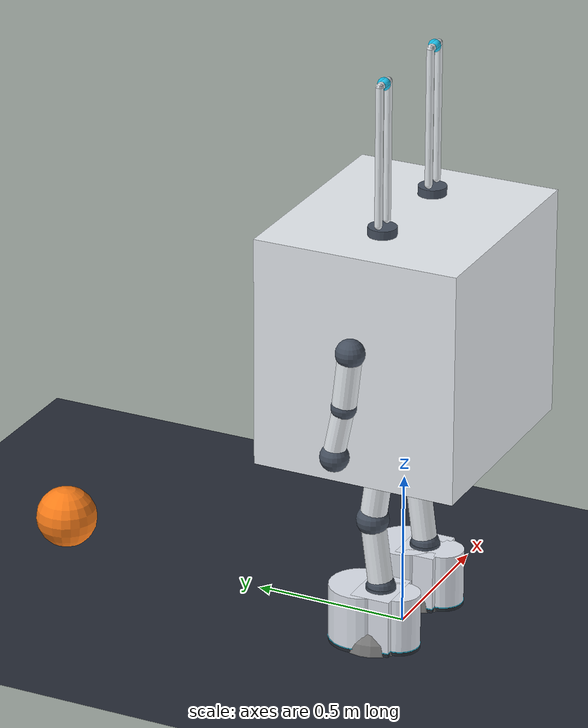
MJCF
<mujoco model="robot_pet">
  <compiler angle="degree" coordinate="local" inertiafromgeom="true"/>
  <!-- Information Boltzmann Unified Cold Bath: Fluid Viscous Dissipation on Free Base -->
  <option timestep="0.002" gravity="0 0 -9.81" iterations="50" solver="Newton" density="1.2" viscosity="0.0005">
    <flag contact="enable" energy="enable"/>
  </option>

  <visual>
    <global offwidth="1024" offheight="1024"/>
  </visual>
  <default>
    <!-- Joint-level Hill-type muscle damping (internal thermal bath dissipation) -->
    <joint damping="0.5" frictionloss="0.08" armature="0.01"/>
    <!-- Inelastic Ground Impact Dissipation: Critical damping solref (zeta=1.0) and high impedance solimp -->
    <geom friction="1.5 0.08 0.05" condim="4" solref="0.006 1.0" solimp="0.95 0.99 0.001 0.5 2"/>
  </default>

  <asset>
    <texture type="skybox" builtin="gradient" rgb1="0.1 0.12 0.15" rgb2="0.02 0.02 0.04" width="256" height="256"/>
    <texture name="plane" type="2d" builtin="checker" rgb1="0.18 0.20 0.25" rgb2="0.12 0.14 0.18" width="512" height="512"/>
    <material name="mat_plane" texture="plane" texrepeat="20 20" reflectance="0.0"/>

    <material name="mat_body" rgba="0.92 0.94 0.96 1" specular="0.3" shininess="0.5"/>
    <texture name="screen_face_tex" type="2d" builtin="flat" rgb1="0.06 0.08 0.11" width="256" height="256"/>
    <material name="mat_screen" texture="screen_face_tex" texrepeat="1 1" texuniform="false" rgba="1 1 1 1" emission="0.95" specular="0.3"/>
    <material name="mat_eye" rgba="1.0 1.0 1.0 1" emission="1.0"/>
    <material name="mat_boot" rgba="0.88 0.90 0.94 1" specular="0.2"/>
    <material name="mat_joint" rgba="0.28 0.32 0.38 1" specular="0.6" shininess="0.8"/>
    <material name="mat_accent" rgba="0.20 0.85 1.0 1" emission="0.7"/>
    <material name="mat_sole" rgba="0.15 0.17 0.20 1" specular="0.1"/>
  </asset>

  <worldbody>
    <!-- Lighting: Key light + Fill light + Subtle rim light -->
    <light directional="true" pos="3 2 5" dir="-0.5 -0.4 -0.8" diffuse="0.95 0.95 0.98" specular="0.3 0.3 0.3"/>
    <light directional="true" pos="-3 -2 4" dir="0.5 0.4 -0.7" diffuse="0.45 0.48 0.55" specular="0.1 0.1 0.1"/>
    <light directional="true" pos="0 -4 3" dir="0 0.8 -0.6" diffuse="0.35 0.35 0.4" specular="0.05 0.05 0.05"/>

    <!-- Ground plane: Unified Cold Bath Dissipation Sink -->
    <geom name="ground" type="plane" pos="0 0 0" size="30 30 0.1" material="mat_plane"/>

    <!-- Robot Root at nominal height z=0.64 -->
    <body name="robot_root" pos="0 0 0.64">
      <freejoint name="root"/>

      <!-- Torso / Head: Width=0.76 (x), Depth=0.66 (y), Height=0.74 (z) -->
      <geom name="torso_geom" type="box" size="0.38 0.33 0.37" pos="0 0 0.37" mass="2.2" material="mat_body"/>

      <!-- Front screen visor: slightly protruding at +y -->
      <geom name="screen_geom" type="box" size="0.30 0.015 0.26" pos="0 0.34 0.38" mass="0.1" material="mat_screen"/>

      <!-- Screen Eyes (joints preserved for compatibility, geoms recessed for OLED screen) -->
      <body name="eye_left" pos="-0.11 0.33 0.40">
        <joint name="eye_roll_l" type="hinge" axis="0 1 0" range="-180 180" damping="0.05"/>
        <geom name="eye_l" type="capsule" size="0.001 0.001" pos="0 0 0" mass="0.001" rgba="0 0 0 0"/>
      </body>

      <body name="eye_right" pos="0.11 0.33 0.40">
        <joint name="eye_roll_r" type="hinge" axis="0 1 0" range="-180 180" damping="0.05"/>
        <geom name="eye_r" type="capsule" size="0.001 0.001" pos="0 0 0" mass="0.001" rgba="0 0 0 0"/>
      </body>

      <!-- Top Loop Antenna Ear Receptors (Sites for spatial hearing) -->
      <geom name="socket_l" type="cylinder" size="0.045 0.018" pos="-0.18 0.0 0.75" mass="0.02" material="mat_joint"/>
      <geom name="socket_r" type="cylinder" size="0.045 0.018" pos="0.18 0.0 0.75" mass="0.02" material="mat_joint"/>

      <!-- Left Loop Antenna -->
      <body name="ear_left" pos="-0.18 0.0 0.76">
        <geom name="antenna_l_strut1" type="capsule" size="0.012 0.22" pos="-0.03 0 0.24" mass="0.02" material="mat_body"/>
        <geom name="antenna_l_strut2" type="capsule" size="0.012 0.22" pos="0.03 0 0.24" mass="0.02" material="mat_body"/>
        <geom name="antenna_l_bridge" type="capsule" size="0.012 0.03" pos="0 0 0.46" euler="0 90 0" mass="0.01" material="mat_body"/>
        <site name="left_ear_sensor" pos="0 0 0.46" size="0.02" rgba="0 0.8 1 0.8"/>
      </body>

      <!-- Right Loop Antenna -->
      <body name="ear_right" pos="0.18 0.0 0.76">
        <geom name="antenna_r_strut1" type="capsule" size="0.012 0.22" pos="-0.03 0 0.24" mass="0.02" material="mat_body"/>
        <geom name="antenna_r_strut2" type="capsule" size="0.012 0.22" pos="0.03 0 0.24" mass="0.02" material="mat_body"/>
        <geom name="antenna_r_bridge" type="capsule" size="0.012 0.03" pos="0 0 0.46" euler="0 90 0" mass="0.01" material="mat_body"/>
        <site name="right_ear_sensor" pos="0 0 0.46" size="0.02" rgba="0 0.8 1 0.8"/>
      </body>

      <!-- Mouth / Vocalization site: on the front face -->
      <site name="mouth_emitter" pos="0 0.35 0.25" size="0.005" rgba="0 0 0 0"/>

      <!-- IMU / Vestibular site at center of mass -->
      <site name="vestibular_site" pos="0 0 0.37" size="0.02"/>

      <!-- ================= ARMS (Continuous Articulated Structure) ================= -->
      <body name="upper_arm_l" pos="-0.40 0.0 0.44">
        <joint name="shoulder_pitch_l" type="hinge" axis="1 0 0" range="-60 90" damping="0.3"/>
        <joint name="shoulder_roll_l" type="hinge" axis="0 1 0" range="0 45" damping="0.3"/>
        <geom name="shoulder_l_joint" type="sphere" size="0.046" pos="0 0 0" mass="0.06" material="mat_joint"/>
        <geom name="upper_arm_l_geom" type="capsule" fromto="0 0 0  0 0.02 -0.18" size="0.038" mass="0.15" material="mat_body"/>

        <body name="forearm_l" pos="0 0.02 -0.18">
          <joint name="elbow_pitch_l" type="hinge" axis="1 0 0" range="-90 10" damping="0.2"/>
          <geom name="elbow_l_joint" type="sphere" size="0.040" pos="0 0 0" mass="0.04" material="mat_joint"/>
          <geom name="forearm_l_geom" type="capsule" fromto="0 0 0  0 0.03 -0.15" size="0.034" mass="0.12" material="mat_body"/>
          <geom name="hand_l_geom" type="sphere" size="0.046" pos="0 0.03 -0.17" mass="0.05" material="mat_joint"/>
        </body>
      </body>

      <body name="upper_arm_r" pos="0.40 0.0 0.44">
        <joint name="shoulder_pitch_r" type="hinge" axis="1 0 0" range="-60 90" damping="0.3"/>
        <joint name="shoulder_roll_r" type="hinge" axis="0 1 0" range="-45 0" damping="0.3"/>
        <geom name="shoulder_r_joint" type="sphere" size="0.046" pos="0 0 0" mass="0.06" material="mat_joint"/>
        <geom name="upper_arm_r_geom" type="capsule" fromto="0 0 0  0 0.02 -0.18" size="0.038" mass="0.15" material="mat_body"/>

        <body name="forearm_r" pos="0 0.02 -0.18">
          <joint name="elbow_pitch_r" type="hinge" axis="1 0 0" range="-90 10" damping="0.2"/>
          <geom name="elbow_r_joint" type="sphere" size="0.040" pos="0 0 0" mass="0.04" material="mat_joint"/>
          <geom name="forearm_r_geom" type="capsule" fromto="0 0 0  0 0.03 -0.15" size="0.034" mass="0.12" material="mat_body"/>
          <geom name="hand_r_geom" type="sphere" size="0.046" pos="0 0.03 -0.17" mass="0.05" material="mat_joint"/>
        </body>
      </body>

      <!-- First-person screen visor eye camera -->
      <camera name="first_person_eyes" pos="0 0.36 0.40" fovy="80" xyaxes="1 0 0 0 0 1"/>

      <!-- ================= LEFT LEG (Clearly Visible Articulated Knee Sphere & Chunky Boot) ================= -->
      <body name="hip_yaw_link_l" pos="-0.165 0.0 0.0">
        <joint name="hip_yaw_l" type="hinge" axis="0 0 1" range="-35 35" damping="0.5"/>
        <geom name="hip_yaw_l_geom" type="sphere" size="0.050" mass="0.06" material="mat_joint"/>

        <body name="hip_roll_link_l" pos="0 0 0">
          <joint name="hip_roll_l" type="hinge" axis="0 1 0" range="-25 25" damping="0.5"/>
          <geom name="hip_roll_l_geom" type="sphere" size="0.046" mass="0.05" material="mat_joint"/>

          <body name="thigh_l" pos="0 0 0">
            <joint name="hip_pitch_l" type="hinge" axis="1 0 0" range="-50 50" damping="0.5"/>
            <!-- White Thigh Armor -->
            <geom name="thigh_l_geom" type="capsule" fromto="0 0 0  0 0.03 -0.22" size="0.042" mass="0.25" material="mat_body"/>

            <!-- PROMINENT VISIBLE KNEE JOINT: Dark Metallic Sphere (radius 0.052 > 0.042) -->
            <body name="shin_l" pos="0 0.03 -0.22">
              <joint name="knee_pitch_l" type="hinge" axis="1 0 0" range="-10 85" damping="0.5"/>
              <geom name="knee_l_joint" type="sphere" size="0.052" mass="0.08" material="mat_joint"/>
              <!-- White Shin Armor -->
              <geom name="shin_l_geom" type="capsule" fromto="0 0 0  0 -0.03 -0.22" size="0.040" mass="0.22" material="mat_body"/>

              <!-- Ankle Joint: Dark Metallic Sphere -->
              <body name="ankle_pitch_link_l" pos="0 -0.03 -0.22">
                <joint name="ankle_pitch_l" type="hinge" axis="1 0 0" range="-50 50" damping="0.4"/>
                <geom name="ankle_pitch_l_geom" type="sphere" size="0.045" mass="0.05" material="mat_joint"/>

                <body name="boot_l" pos="0 0 0">
                  <joint name="ankle_roll_l" type="hinge" axis="0 1 0" range="-25 25" damping="0.4"/>
                  <!-- Anatomical Cyber Boot: Narrow Heel (w=0.130), Tapering Midfoot (w=0.170), Wide Forefoot (w=0.210) -->
                  <!-- 1. Metallic Ankle Interface Collar -->
                  <geom name="boot_l_collar" type="cylinder" size="0.048 0.010" pos="0 0 -0.010" mass="0.03" material="mat_joint"/>

                  <!-- 2. Sculpted Upper Armor (White Polymer Chassis) -->
                  <geom name="boot_l_heel" type="cylinder" size="0.065 0.088" pos="0 -0.065 -0.098" mass="0.13" material="mat_boot"/>
                  <geom name="boot_l_mid" type="box" size="0.085 0.065 0.088" pos="0 0.000 -0.098" mass="0.18" material="mat_boot"/>
                  <geom name="boot_l_fore" type="cylinder" size="0.105 0.088" pos="0 0.065 -0.098" mass="0.15" material="mat_boot"/>

                  <!-- 3. Luminous Cyan Accent Stripe (Tech Runner Illumination) -->
                  <geom name="boot_l_accent_h" type="cylinder" size="0.066 0.0015" pos="0 -0.065 -0.1875" mass="0.002" material="mat_accent"/>
                  <geom name="boot_l_accent_m" type="box" size="0.086 0.065 0.0015" pos="0 0.000 -0.1875" mass="0.004" material="mat_accent"/>
                  <geom name="boot_l_accent_t" type="cylinder" size="0.106 0.0015" pos="0 0.065 -0.1875" mass="0.004" material="mat_accent"/>

                  <!-- 4. High-Friction Vulcanized Rubber Outsole (Coplanar Ground Flat Plane at z = -0.200) -->
                  <geom name="boot_l_sole_h" type="cylinder" size="0.065 0.0055" pos="0 -0.065 -0.1945" mass="0.015" material="mat_sole"/>
                  <geom name="boot_l_sole_m" type="box" size="0.085 0.065 0.0055" pos="0 0.000 -0.1945" mass="0.020" material="mat_sole"/>
                  <geom name="boot_l_sole_t" type="cylinder" size="0.105 0.0055" pos="0 0.065 -0.1945" mass="0.015" material="mat_sole"/>

                  <site name="boot_l_sole" pos="0 0.02 -0.20" size="0.11 0.13 0.01"/>
                </body>
              </body>
            </body>
          </body>
        </body>
      </body>

      <!-- ================= RIGHT LEG (Clearly Visible Articulated Knee Sphere & Chunky Boot) ================= -->
      <body name="hip_yaw_link_r" pos="0.165 0.0 0.0">
        <joint name="hip_yaw_r" type="hinge" axis="0 0 1" range="-35 35" damping="0.5"/>
        <geom name="hip_yaw_r_geom" type="sphere" size="0.050" mass="0.06" material="mat_joint"/>

        <body name="hip_roll_link_r" pos="0 0 0">
          <joint name="hip_roll_r" type="hinge" axis="0 1 0" range="-25 25" damping="0.5"/>
          <geom name="hip_roll_r_geom" type="sphere" size="0.046" mass="0.05" material="mat_joint"/>

          <body name="thigh_r" pos="0 0 0">
            <joint name="hip_pitch_r" type="hinge" axis="1 0 0" range="-50 50" damping="0.5"/>
            <!-- White Thigh Armor -->
            <geom name="thigh_r_geom" type="capsule" fromto="0 0 0  0 0.03 -0.22" size="0.042" mass="0.25" material="mat_body"/>

            <!-- PROMINENT VISIBLE KNEE JOINT: Dark Metallic Sphere (radius 0.052 > 0.042) -->
            <body name="shin_r" pos="0 0.03 -0.22">
              <joint name="knee_pitch_r" type="hinge" axis="1 0 0" range="-10 85" damping="0.5"/>
              <geom name="knee_r_joint" type="sphere" size="0.052" mass="0.08" material="mat_joint"/>
              <!-- White Shin Armor -->
              <geom name="shin_r_geom" type="capsule" fromto="0 0 0  0 -0.03 -0.22" size="0.040" mass="0.22" material="mat_body"/>

              <!-- Ankle Joint: Dark Metallic Sphere -->
              <body name="ankle_pitch_link_r" pos="0 -0.03 -0.22">
                <joint name="ankle_pitch_r" type="hinge" axis="1 0 0" range="-50 50" damping="0.4"/>
                <geom name="ankle_pitch_r_geom" type="sphere" size="0.045" mass="0.05" material="mat_joint"/>

                <body name="boot_r" pos="0 0 0">
                  <joint name="ankle_roll_r" type="hinge" axis="0 1 0" range="-25 25" damping="0.4"/>
                  <!-- Anatomical Cyber Boot: Narrow Heel (w=0.130), Tapering Midfoot (w=0.170), Wide Forefoot (w=0.210) -->
                  <!-- 1. Metallic Ankle Interface Collar -->
                  <geom name="boot_r_collar" type="cylinder" size="0.048 0.010" pos="0 0 -0.010" mass="0.03" material="mat_joint"/>

                  <!-- 2. Sculpted Upper Armor (White Polymer Chassis) -->
                  <geom name="boot_r_heel" type="cylinder" size="0.065 0.088" pos="0 -0.065 -0.098" mass="0.13" material="mat_boot"/>
                  <geom name="boot_r_mid" type="box" size="0.085 0.065 0.088" pos="0 0.000 -0.098" mass="0.18" material="mat_boot"/>
                  <geom name="boot_r_fore" type="cylinder" size="0.105 0.088" pos="0 0.065 -0.098" mass="0.15" material="mat_boot"/>

                  <!-- 3. Luminous Cyan Accent Stripe (Tech Runner Illumination) -->
                  <geom name="boot_r_accent_h" type="cylinder" size="0.066 0.0015" pos="0 -0.065 -0.1875" mass="0.002" material="mat_accent"/>
                  <geom name="boot_r_accent_m" type="box" size="0.086 0.065 0.0015" pos="0 0.000 -0.1875" mass="0.004" material="mat_accent"/>
                  <geom name="boot_r_accent_t" type="cylinder" size="0.106 0.0015" pos="0 0.065 -0.1875" mass="0.004" material="mat_accent"/>

                  <!-- 4. High-Friction Vulcanized Rubber Outsole (Coplanar Ground Flat Plane at z = -0.200) -->
                  <geom name="boot_r_sole_h" type="cylinder" size="0.065 0.0055" pos="0 -0.065 -0.1945" mass="0.015" material="mat_sole"/>
                  <geom name="boot_r_sole_m" type="box" size="0.085 0.065 0.0055" pos="0 0.000 -0.1945" mass="0.020" material="mat_sole"/>
                  <geom name="boot_r_sole_t" type="cylinder" size="0.105 0.0055" pos="0 0.065 -0.1945" mass="0.015" material="mat_sole"/>

                  <site name="boot_r_sole" pos="0 0.02 -0.20" size="0.11 0.13 0.01"/>
                </body>
              </body>
            </body>
          </body>
        </body>
      </body>

    </body>

    <!-- Interactive Curiosity Target: Radiant Ether Toy Ball -->
    <body name="toy_ball" pos="0 1.2 0.10">
      <freejoint name="toy_ball_joint"/>
      <geom name="toy_ball_geom" type="sphere" size="0.10" mass="0.15" rgba="1.0 0.5 0.1 1.0"/>
      <site name="toy_ball_site" pos="0 0 0" size="0.04" rgba="1 0.8 0.2 0.8"/>
    </body>
  </worldbody>

  <!-- Actuators: Joint Motors with Responsive Damping -->
  <actuator>
    <!-- Left Leg -->
    <position name="motor_hip_yaw_l" joint="hip_yaw_l" kp="80" kv="8" ctrlrange="-0.6 0.6"/>
    <position name="motor_hip_roll_l" joint="hip_roll_l" kp="140" kv="12" ctrlrange="-0.44 0.44"/>
    <position name="motor_hip_pitch_l" joint="hip_pitch_l" kp="120" kv="10" ctrlrange="-0.85 0.85"/>
    <position name="motor_knee_l" joint="knee_pitch_l" kp="120" kv="10" ctrlrange="-0.15 1.4"/>
    <position name="motor_ankle_pitch_l" joint="ankle_pitch_l" kp="150" kv="12" ctrlrange="-0.85 0.85"/>
    <position name="motor_ankle_roll_l" joint="ankle_roll_l" kp="90" kv="8" ctrlrange="-0.40 0.40"/>

    <!-- Right Leg -->
    <position name="motor_hip_yaw_r" joint="hip_yaw_r" kp="80" kv="8" ctrlrange="-0.6 0.6"/>
    <position name="motor_hip_roll_r" joint="hip_roll_r" kp="140" kv="12" ctrlrange="-0.44 0.44"/>
    <position name="motor_hip_pitch_r" joint="hip_pitch_r" kp="120" kv="10" ctrlrange="-0.85 0.85"/>
    <position name="motor_knee_r" joint="knee_pitch_r" kp="120" kv="10" ctrlrange="-0.15 1.4"/>
    <position name="motor_ankle_pitch_r" joint="ankle_pitch_r" kp="150" kv="12" ctrlrange="-0.85 0.85"/>
    <position name="motor_ankle_roll_r" joint="ankle_roll_r" kp="90" kv="8" ctrlrange="-0.40 0.40"/>

    <!-- Arms -->
    <position name="motor_shoulder_pitch_l" joint="shoulder_pitch_l" kp="30" kv="4" ctrlrange="-1.0 1.5"/>
    <position name="motor_shoulder_roll_l" joint="shoulder_roll_l" kp="25" kv="3" ctrlrange="0.0 0.8"/>
    <position name="motor_elbow_l" joint="elbow_pitch_l" kp="20" kv="2" ctrlrange="-1.5 0.2"/>

    <position name="motor_shoulder_pitch_r" joint="shoulder_pitch_r" kp="30" kv="4" ctrlrange="-1.0 1.5"/>
    <position name="motor_shoulder_roll_r" joint="shoulder_roll_r" kp="25" kv="3" ctrlrange="-0.8 0.0"/>
    <position name="motor_elbow_r" joint="elbow_pitch_r" kp="20" kv="2" ctrlrange="-1.5 0.2"/>
  </actuator>

  <!-- Sensors -->
  <sensor>
    <touch name="touch_boot_l" site="boot_l_sole"/>
    <touch name="touch_boot_r" site="boot_r_sole"/>
    <accelerometer name="accel" site="vestibular_site"/>
    <gyro name="gyro" site="vestibular_site"/>
  </sensor>

  <!-- Contact Exclusions: Ignore internal joint overlap within the kinematic chain -->
  <contact>
    <exclude body1="robot_root" body2="upper_arm_l"/>
    <exclude body1="robot_root" body2="forearm_l"/>
    <exclude body1="robot_root" body2="upper_arm_r"/>
    <exclude body1="robot_root" body2="forearm_r"/>
    <exclude body1="robot_root" body2="hip_yaw_link_l"/>
    <exclude body1="robot_root" body2="hip_roll_link_l"/>
    <exclude body1="robot_root" body2="thigh_l"/>
    <exclude body1="robot_root" body2="hip_yaw_link_r"/>
    <exclude body1="robot_root" body2="hip_roll_link_r"/>
    <exclude body1="robot_root" body2="thigh_r"/>
    <exclude body1="hip_yaw_link_l" body2="thigh_l"/>
    <exclude body1="hip_yaw_link_r" body2="thigh_r"/>
    <exclude body1="shin_l" body2="boot_l"/>
    <exclude body1="shin_r" body2="boot_r"/>
  </contact>
</mujoco>
